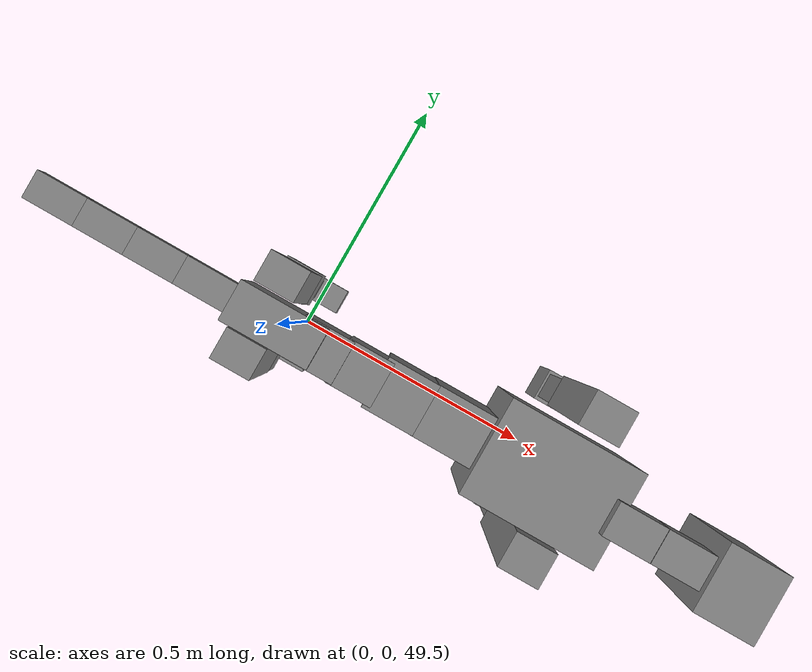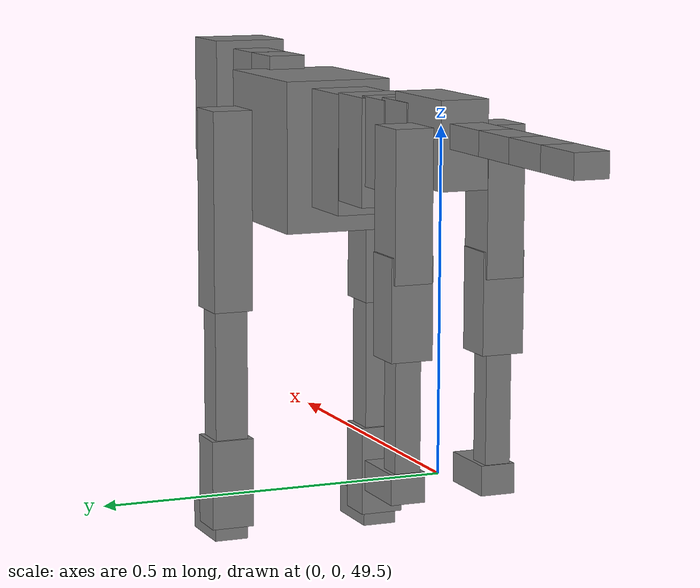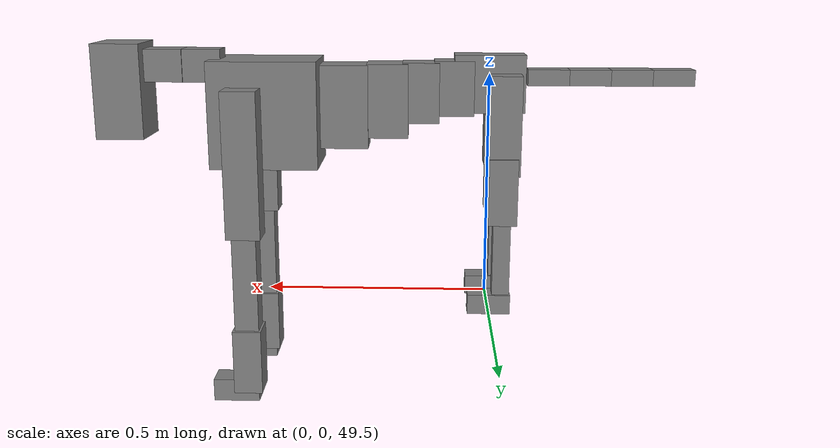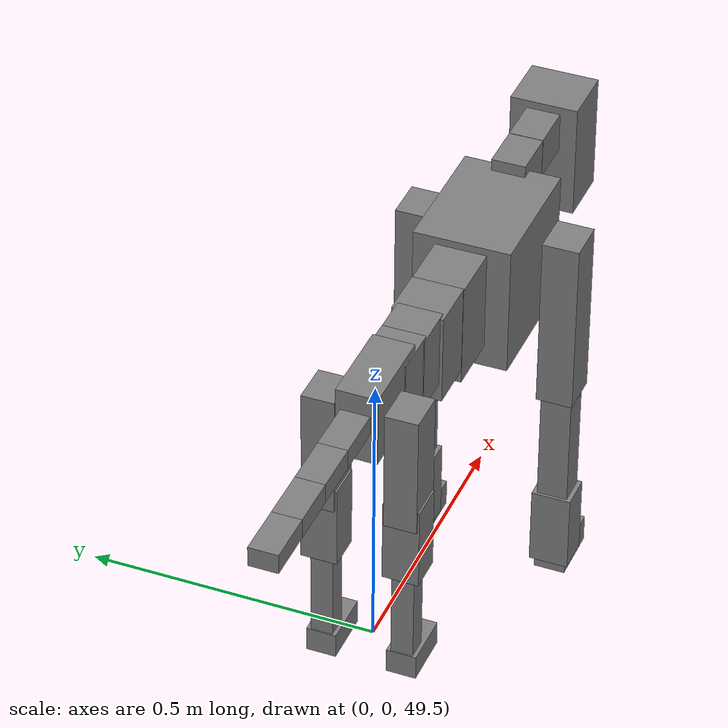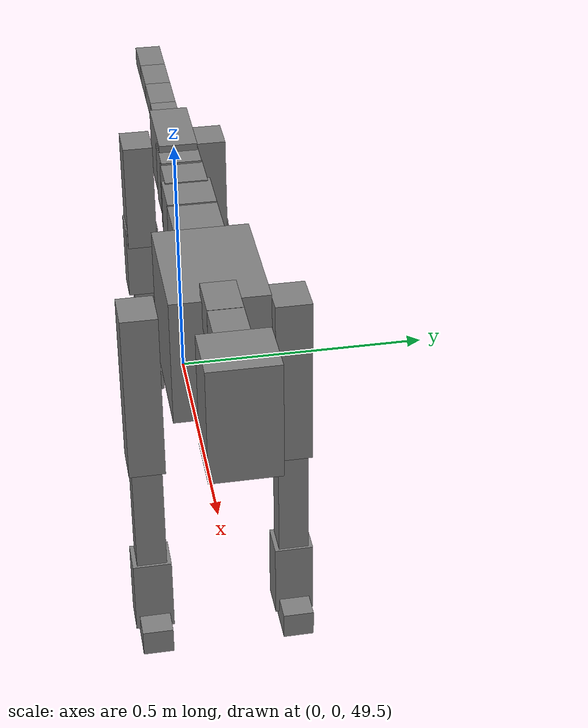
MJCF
<mujoco model="dog">

    <default>
        <joint armature="0.02" stiffness="1" damping="0.2" limited="true"/>
        <geom condim="3" friction="1 0.05 0.05" margin="0.01"/>
        <motor ctrllimited="true" ctrlrange="-1.0 1.0" forcelimited="true" gear="50"/>
    </default>

    <compiler inertiafromgeom="true" angle="radian"/>

    <option timestep="0.016" iterations="50" tolerance="1e-10" solver="Newton" jacobian="dense" cone="pyramidal"/>

    <size nconmax="20000" njmax="60000" nstack="5000000"/>
    <visual>
        <map force="0.1" zfar="30"/>
        <rgba haze="0.15 0.25 0.35 1"/>
        <quality shadowsize="2048"/>
        <global offwidth="800" offheight="800"/>
    </visual>

    <asset>
        <texture type="skybox" builtin="gradient" rgb1="0.3 0.5 0.7" rgb2="0 0 0" width="512" height="512"/>
        <texture name="texplane" type="2d" builtin="checker" rgb1=".2 .3 .4" rgb2=".1 0.15 0.2" width="512" height="512"
                 mark="cross" markrgb=".8 .8 .8"/>
        <texture name="texgeom" type="cube" builtin="flat" mark="cross" width="127" height="1278" rgb1="0.8 0.6 0.4"
                 rgb2="0.8 0.6 0.4" markrgb="1 1 1" random="0.01"/>

        <material name="matplane" reflectance="0.3" texture="texplane" texrepeat="1 1" texuniform="true"/>
        <material name="matgeom" texture="texgeom" texuniform="true" rgba="0.8 0.6 .4 1"/>
    </asset>

    <worldbody>
        <geom name="floor" pos="0 0 0" size="0 0 .25" type="plane" material="matplane" condim="3"/>

        <light directional="false" diffuse=".2 .2 .2" specular="0 0 0" pos="0 0 5" dir="0 0 -1" castshadow="false"/>
        <light mode="targetbodycom" target="torso" directional="false" diffuse=".8 .8 .8" specular="0.3 0.3 0.3"
               pos="0 0 4.0" dir="0 0 -1"/>

        <body name="root" pos="0 0 50">
            <freejoint name="root_1"/>
            <geom type="box" pos="0 0 -0.02" size="0.0774  0.0358  0.063" density="2030"/>

            <body name="spine1" pos="0.054 0 0">
                <joint name="spine1_y" axis="0 1 0" range="0 0.7" limited="true"/>
                <geom type="box" pos="0.02375 0 -0.03" size="0.04375  0.0375  0.05985" density="2030"/>

                <body name="spine2" pos="0.0612 0 0">
                    <joint name="spine2_y" axis="0 1 0" range="-0.15 0.15" limited="true"/>
                    <geom type="box" pos="0.03555  0  -0.04" size="0.04055  0.039  0.06615" density="2030"/>

                    <body name="spine3" pos="0.0730 0 0">
                        <joint name="spine3_y" axis="0 1 0" range="-0.15 0.15" limited="true"/>
                        <geom type="box" pos="0.03555  0  -0.057" size="0.04555  0.0445  0.081" density="2030"/>

                        <body name="spine4" pos="0.0780 0 0">
                            <joint name="spine4_y" axis="0 1 0" range="-0.15 0.15" limited="true"/>
                            <geom type="box" pos="0.05265  0  -0.07" size="0.05265  0.045  0.09135" density="2030"/>

                            <body name="torso" pos="0.1082 0 0">
                                <joint name="torso_y" axis="0 1 0" range="-0.15 0.15" limited="true"/>
                                <geom type="box" pos="0.11925  0  -0.085" size="0.11925  0.085  0.11745"
                                      density="2030"/>

                                <body name="neck1" pos="0.2160  0   0.0180">
                                    <joint name="neck1_y" axis="0 1 0" range="-1.2  -1" limited="true"/>
                                    <geom type="box" pos="0.0423  0  0" size="0.0423  0.03  0.036" density="2325"/>

                                    <body name="neck2" pos="0.0853  0  0">
                                        <joint name="neck2_y" axis="0 1 0" range="0.1  0" limited="true"/>
                                        <geom type="box" pos="0.0423  0  0" size="0.0423  0.03  0.036" density="2325"/>

                                        <body name="head" pos="0.0853  0  0">
                                            <joint name="head_y" axis="0 1 0" range="-0.3  -0.2" limited="true"/>
                                            <geom type="box" pos="0.0531  0  -0.055" size="0.0531  0.06  0.1044"
                                                  density="4030"/>

                                        </body>
                                    </body>
                                </body>

                                <body name="front_shoulder" pos="0.156  0   -0.0480">
                                    <joint name="front_shoulder_y" axis="0 1 0" range="-1 1.5" limited="true"/>
                                    <geom type="box" pos="0 0.13 -0.1333" size="0.0376  0.0322  0.1599" density="1158"/>
                                    <geom type="box" pos="0 -0.13 -0.1333" size="0.0376  0.0322  0.1599"
                                          density="1158"/>

                                    <body name="front_elbow" pos="0  0  -0.2665">
                                        <joint name="front_elbow_y" axis="0 1 0" range="-2 0" limited="true"/>
                                        <geom type="box" pos="0 0.13 -0.1246" size="0.0265  0.0271  0.1246"
                                              density="1081"/>
                                        <geom type="box" pos="0 -0.13 -0.1246" size="0.0265  0.0271  0.1246"
                                              density="1081"/>

                                        <body name="front_wrist" pos="0  0  -0.2492">
                                            <joint name="front_wrist_y" axis="0 1 0" range="-0.2 0" limited="true"/>
                                            <geom type="box" pos="0 0.13 -0.0591" size="0.0315  0.0350  0.0723"
                                                  density="1664"/>
                                            <geom type="box" pos="0 -0.13 -0.0591" size="0.0315  0.0350  0.0723"
                                                  density="1664"/>

                                            <body name="front_finger_end" pos="0  0  -0.1182">
                                                <joint name="front_finger_y" axis="0 1 0" range="-0.4 1"
                                                       limited="true"/>
                                                <geom type="box" pos="0.0278  0.13  -0.0100"
                                                      size="0.0509  0.0278  0.0250" density="1515"/>
                                                <geom type="box" pos="0.0278  -0.13  -0.0100"
                                                      size="0.0509  0.0278  0.0250" density="1515"/>

                                            </body>

                                        </body>
                                    </body>
                                </body>

                            </body>
                        </body>
                    </body>
                </body>
            </body>

            <body name="back_hip" pos="-0.03 0 -0.018">
                <joint name="back_hip_y" axis="0 1 0" range="-1.5 0.3" limited="true"/>
                <geom type="box" pos="0 0.07 -0.0853" size="0.0359  0.0282  0.1081" density="1154"/>
                <geom type="box" pos="0 -0.07 -0.0853" size="0.0359  0.0282  0.1081" density="1154"/>

                <body name="back_knee" pos="0  0  -0.1706">
                    <joint name="back_knee_y" axis="0 1 0" range="0 2.8" limited="true"/>
                    <geom type="box" pos="0 0.07 -0.0583" size="0.0316  0.0312  0.0738" density="1227"/>
                    <geom type="box" pos="0 -0.07 -0.0583" size="0.0316  0.0312  0.0738" density="1227"/>

                    <body name="back_ankle" pos="0  0  -0.1165">
                        <joint name="back_ankle_y" axis="0 1 0" range="-2.2 0" limited="true"/>
                        <geom type="box" pos="0 0.07 -0.0959" size="0.0192  0.0192  0.1071" density="1284"/>
                        <geom type="box" pos="0 -0.07 -0.0959" size="0.0192  0.0192  0.1071" density="1284"/>

                        <body name="back_toe_end" pos="0  0  -0.1918">
                            <joint name="back_toe_y" axis="0 1 0" range="-0.4 1" limited="true"/>
                            <geom type="box" pos="0.0258  0.07  -0.0070" size="0.0473  0.0258  0.0220" density="1515"/>
                            <geom type="box" pos="0.0258  -0.07  -0.0070" size="0.0473  0.0258  0.0220" density="1515"/>

                        </body>
                    </body>
                </body>
            </body>

            <body name="tail1" pos="-0.074 0 -0.006">
                <joint name="tail1_y" axis="0 1 0" range="-0.2 0.2" limited="true"/>
                <geom type="box" pos="-0.0536  0  0" size="0.045  0.025  0.0175" density="1587"/>

                <body name="tail2" pos="-0.09 0 0">
                    <joint name="tail2_y" axis="0 1 0" range="-0.2 0.2" limited="true"/>
                    <geom type="box" pos="-0.0536  0  0" size="0.045  0.025  0.0175" density="1587"/>

                    <body name="tail3" pos="-0.09 0 0">
                        <joint name="tail3_y" axis="0 1 0" range="-0.2 0.2" limited="true"/>
                        <geom type="box" pos="-0.0536  0  0" size="0.045  0.025  0.0175" density="1587"/>

                        <body name="tail4" pos="-0.09 0 0">
                            <joint name="tail4_y" axis="0 1 0" range="-0.2 0.2" limited="true"/>
                            <geom type="box" pos="-0.0536  0  0" size="0.045  0.025  0.0175" density="1587"/>

                        </body>
                    </body>
                </body>
            </body>
        </body>
    </worldbody>

    <actuator>
        <motor joint="spine1_y" forcerange="-150 150     "/>
        <motor joint="spine2_y" forcerange="-150 150     "/>
        <motor joint="spine3_y" forcerange="-150 150     "/>
        <motor joint="spine4_y" forcerange="-150 150     "/>
        <motor joint="torso_y" forcerange="-150 150     "/>
        <motor joint="neck1_y" forcerange="-100 100       "/>
        <motor joint="neck2_y" forcerange="-100 100       "/>
        <motor joint="head_y" forcerange="-150 150       "/>
        <motor joint="front_shoulder_y" forcerange="-158.40 156.03"/>
        <motor joint="front_elbow_y" forcerange="-170.75 126.09"/>
        <motor joint="front_wrist_y" forcerange="-130.13 149.93"/>
        <motor joint="front_finger_y" forcerange="-38.34 69.78"/>
        <motor joint="back_hip_y" forcerange="-309.09 266.59"/>
        <motor joint="back_knee_y" forcerange="-329.74 323.71"/>
        <motor joint="back_angle_y" forcerange="-100.03 107.03"/>
        <motor joint="back_toe_y" forcerange="-50.99 75.44"/>
        <motor joint="tail1_y" forcerange="-50 50     "/>
        <motor joint="tail2_y" forcerange="-50 50     "/>
        <motor joint="tail3_y" forcerange="-50 50     "/>
        <motor joint="tail4_y" forcerange="-50 50     "/>
    </actuator>
</mujoco>
